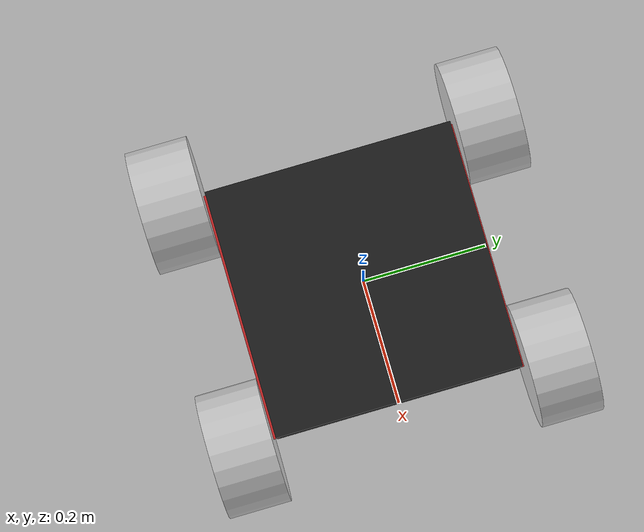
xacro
<?xml version="1.0"?>
<robot xmlns:xacro="http://www.ros.org/wiki/xacro" name="track_robot">

<!--common-->
<xacro:include filename="$(find track_robot_description)/urdf/common.urdf.xacro" />
<xacro:include filename="$(find track_robot_description)/urdf/materials.urdf.xacro" />

<xacro:include filename="$(find track_robot_description)/urdf/track.urdf.xacro" />

<xacro:property name="box_length" value="0.4"/>

<link name="base_link" >
<origin xyz="0 0 ${0.1/2 + 0.1}" rpy="0 0 0" />
<visual>
<geometry>
<box size="${box_length} ${box_length} 0.1" />
</geometry>
<material name="Black"/>
</visual>
</link>

<xacro:track name="left_track" parent="base_link" length="${box_length}" spin="-${M_PI/2}" >
<origin xyz="0 0.2 0" rpy="0 ${M_PI/2} 0" />
</xacro:track>

<xacro:track name="right_track" parent="base_link" length="${box_length}" spin="${M_PI/2}" >
<origin xyz="0 -0.2 0" rpy="${M_PI} ${M_PI/2} 0" />
</xacro:track>

</robot>

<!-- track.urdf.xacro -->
<robot xmlns:xacro="http://www.ros.org/wiki/xacro">

<xacro:include filename="$(find track_robot_description)/urdf/wheel.urdf.xacro" />

<xacro:macro name="track" params="name parent *origin length spin">

<joint name="${name}_joint" type="fixed" >
<parent link="${parent}" />
<child link="${name}" />
<xacro:insert_block name="origin" />
</joint>

<xacro:property name="square_dim" value="0.01"/>

<link name="${name}" >
<visual>
<geometry>
<box size="${square_dim} ${square_dim} ${length}" />
</geometry>
<material name="Red"/>
</visual>
</link>

<xacro:wheel name="${name}_back_wheel" parent="${name}" >
<origin xyz="0 0.055 -${length/2}" rpy="${spin} 0 0" />
</xacro:wheel>

<xacro:wheel name="${name}_front_wheel" parent="${name}" >
<origin xyz="0 0.055 ${length/2}" rpy="${spin} 0 0" />
</xacro:wheel>

</xacro:macro>

</robot>

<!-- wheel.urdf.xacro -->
<robot xmlns:xacro="http://www.ros.org/wiki/xacro">

<xacro:macro name="wheel" params="name parent *origin">

<joint name="${name}_joint" type="continuous" >
<parent link="${parent}" />
<child link="${name}" />
<xacro:insert_block name="origin" />
<axis xyz="0 0 1" rpy="0 0 0" />
<limit effort="30" velocity="0.2" />
</joint>

<link name="${name}">
<visual>
<geometry>
<cylinder radius="0.1" length="0.1" />
</geometry>
<material name="LightGrey2"/>
</visual>
<collision >
<geometry>
<cylinder radius="0.11" length="0.11" />
</geometry>
</collision>
</link>

<transmission name="${name}_trans" type="SimpleTransmission">
<type>transmission_interface/SimpleTransmission</type>
<actuator name="${name}_motor">
<mechanicalReduction>1</mechanicalReduction>
</actuator>
<joint name="${name}_joint">
<hardwareInterface>hardware_interface/VelocityJointInterface</hardwareInterface>
</joint>
</transmission>

</xacro:macro>

</robot>
